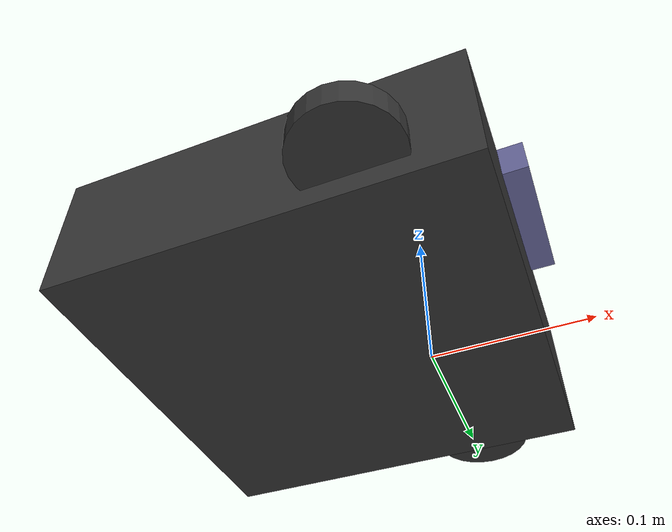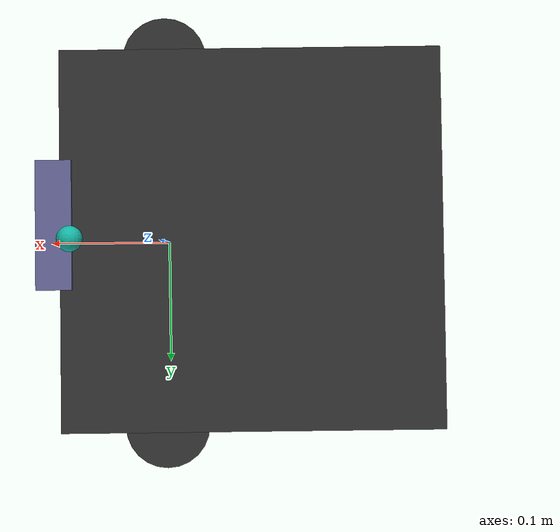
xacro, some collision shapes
<?xml version="1.0" ?>
<robot name="turtlebot3_phantom" xmlns:xacro="http://ros.org/wiki/xacro">

  <!-- ── Robot base ──────────────────────────────────────────────────── -->
  <link name="base_footprint"/>

  <joint name="base_joint" type="fixed">
    <parent link="base_footprint"/>
    <child link="base_link"/>
    <origin xyz="0 0 0.010" rpy="0 0 0"/>
  </joint>

  <link name="base_link">
    <visual>
      <origin xyz="-0.064 0 0.0" rpy="0 0 0"/>
      <geometry>
        <mesh filename="package://turtlebot3_description/meshes/bases/waffle_pi_base.stl"
              scale="0.001 0.001 0.001"/>
      </geometry>
      <material name="light_black"><color rgba="0.2 0.2 0.2 1.0"/></material>
    </visual>
    <collision>
      <origin xyz="-0.064 0 0.047" rpy="0 0 0"/>
      <geometry><box size="0.266 0.266 0.094"/></geometry>
    </collision>
    <inertial>
      <origin xyz="0 0 0" rpy="0 0 0"/>
      <mass value="1.3729096"/>
      <inertia ixx="8.7002718e-03" ixy="-4.7576583e-05" ixz="1.1160499e-04"
               iyy="8.6195418e-03" iyz="-3.5422299e-06" izz="1.4612727e-02"/>
    </inertial>
  </link>

  <!-- ── Wheels (simplified) ─────────────────────────────────────────── -->
  <xacro:macro name="wheel" params="prefix x_offset y_offset">
    <link name="${prefix}_wheel_link">
      <visual>
        <origin xyz="0 0 0" rpy="${pi/2} 0 0"/>
        <geometry><cylinder length="0.018" radius="0.033"/></geometry>
        <material name="dark"><color rgba="0.2 0.2 0.2 1"/></material>
      </visual>
      <collision>
        <origin xyz="0 0 0" rpy="${pi/2} 0 0"/>
        <geometry><cylinder length="0.018" radius="0.033"/></geometry>
      </collision>
      <inertial>
        <origin xyz="0 0 0" rpy="0 0 0"/>
        <mass value="0.1"/>
        <inertia ixx="1.1175580e-05" ixy="-4.2369783e-11" ixz="-5.9381719e-09"
                 iyy="1.1192413e-05" iyz="-1.4400107e-11" izz="2.0712558e-05"/>
      </inertial>
    </link>
    <joint name="${prefix}_wheel_joint" type="continuous">
      <parent link="base_link"/>
      <child link="${prefix}_wheel_link"/>
      <origin xyz="${x_offset} ${y_offset} 0.023" rpy="-${pi/2} 0 0"/>
      <axis xyz="0 0 1"/>
    </joint>
  </xacro:macro>

  <xacro:wheel prefix="wheel_left"  x_offset="0.0"   y_offset="0.144"/>
  <xacro:wheel prefix="wheel_right" x_offset="0.0"   y_offset="-0.144"/>

  <!-- ── Intel RealSense D435i (depth camera) ─────────────────────────── -->
  <joint name="camera_joint" type="fixed">
    <parent link="base_link"/>
    <child link="camera_link"/>
    <origin xyz="0.073 -0.011 0.084" rpy="0 0 0"/>
  </joint>

  <link name="camera_link">
    <visual>
      <origin xyz="0 0 0" rpy="0 0 0"/>
      <geometry><box size="0.025 0.090 0.025"/></geometry>
      <material name="blue_grey"><color rgba="0.4 0.4 0.6 1"/></material>
    </visual>
  </link>

  <!-- ── Gazebo RealSense Plugin ─────────────────────────────────────── -->
  <gazebo reference="camera_link">
    <sensor name="depth_camera" type="depth">
      <update_rate>30</update_rate>
      <camera>
        <horizontal_fov>1.5184</horizontal_fov>
        <image>
          <width>640</width>
          <height>480</height>
          <format>R8G8B8</format>
        </image>
        <depth_camera>
          <output>depths</output>
        </depth_camera>
        <clip>
          <near>0.1</near>
          <far>8.0</far>
        </clip>
      </camera>
      <plugin name="phantom_depth_driver" filename="libgazebo_ros_camera.so">
        <ros>
          <remapping>~/image_raw:=/camera/image_raw</remapping>
          <remapping>~/depth/image_raw:=/camera/depth/image_raw</remapping>
          <remapping>~/camera_info:=/camera/camera_info</remapping>
        </ros>
        <camera_name>camera</camera_name>
        <frame_name>camera_link</frame_name>
        <hack_baseline>0.07</hack_baseline>
      </plugin>
    </sensor>
  </gazebo>

  <!-- ── Acoustic Emitter/Receiver (custom plugin simulation) ─────────── -->
  <joint name="acoustic_joint" type="fixed">
    <parent link="base_link"/>
    <child link="acoustic_link"/>
    <!-- Mounted at top of robot, pointing forward -->
    <origin xyz="0.05 0 0.15" rpy="0 0 0"/>
  </joint>

  <link name="acoustic_link">
    <visual>
      <geometry><sphere radius="0.008"/></geometry>
      <material name="teal"><color rgba="0.08 0.72 0.65 1"/></material>
    </visual>
  </link>

  <!-- Acoustic chirp plugin — publishes to /phantom_echo/acoustic_raw -->
  <gazebo reference="acoustic_link">
    <sensor name="acoustic_chirp" type="ray">
      <!-- Approximated as ray sensor for simulation — real implementation
           uses pyroomacoustics RIR simulation in phantom_echo_acoustic_node -->
      <update_rate>5</update_rate>
      <ray>
        <scan>
          <horizontal>
            <samples>1</samples>
            <resolution>1</resolution>
            <min_angle>0</min_angle>
            <max_angle>0</max_angle>
          </horizontal>
          <vertical>
            <samples>5</samples>
            <resolution>1</resolution>
            <min_angle>-0.3</min_angle>
            <max_angle>0.3</max_angle>
          </vertical>
        </scan>
        <range>
          <min>0.1</min>
          <max>6.0</max>
          <resolution>0.01</resolution>
        </range>
      </ray>
      <plugin name="acoustic_ray_plugin" filename="libgazebo_ros_ray_sensor.so">
        <ros>
          <remapping>~/out:=/phantom_echo/acoustic_ranges</remapping>
        </ros>
        <output_type>sensor_msgs/LaserScan</output_type>
        <frame_name>acoustic_link</frame_name>
      </plugin>
    </sensor>
  </gazebo>

  <!-- ── IMU ────────────────────────────────────────────────────────── -->
  <joint name="imu_joint" type="fixed">
    <parent link="base_link"/>
    <child link="imu_link"/>
    <origin xyz="-0.032 0 0.068" rpy="0 0 0"/>
  </joint>

  <link name="imu_link"/>

  <gazebo reference="imu_link">
    <sensor name="imu" type="imu">
      <update_rate>200</update_rate>
      <plugin name="phantom_imu" filename="libgazebo_ros_imu_sensor.so">
        <ros>
          <remapping>~/out:=/imu</remapping>
        </ros>
        <initial_orientation_as_reference>false</initial_orientation_as_reference>
      </plugin>
    </sensor>
  </gazebo>

  <!-- ── Differential drive plugin ──────────────────────────────────── -->
  <gazebo>
    <plugin name="turtlebot3_diff_drive" filename="libgazebo_ros_diff_drive.so">
      <ros>
        <remapping>cmd_vel:=cmd_vel</remapping>
        <remapping>odom:=odom</remapping>
      </ros>
      <left_joint>wheel_left_joint</left_joint>
      <right_joint>wheel_right_joint</right_joint>
      <wheel_separation>0.288</wheel_separation>
      <wheel_diameter>0.066</wheel_diameter>
      <max_wheel_torque>20</max_wheel_torque>
      <max_wheel_acceleration>1.0</max_wheel_acceleration>
      <publish_odom>true</publish_odom>
      <publish_odom_tf>true</publish_odom_tf>
      <publish_wheel_tf>false</publish_wheel_tf>
      <odometry_frame>odom</odometry_frame>
      <robot_base_frame>base_footprint</robot_base_frame>
    </plugin>
  </gazebo>

</robot>
